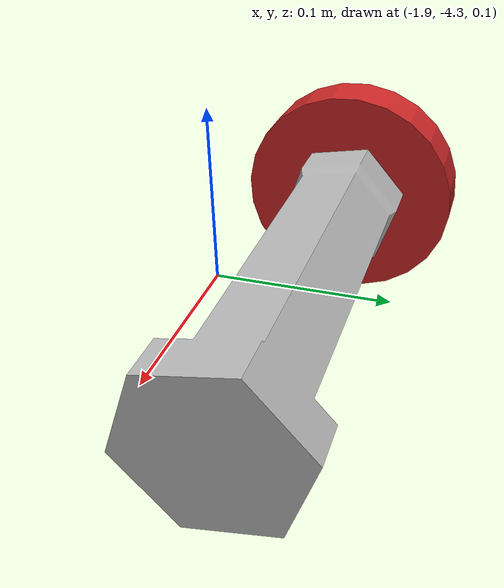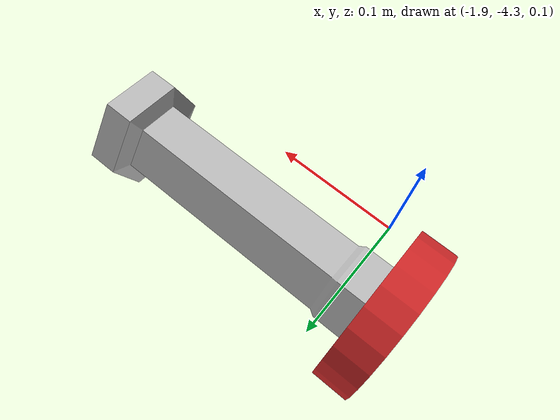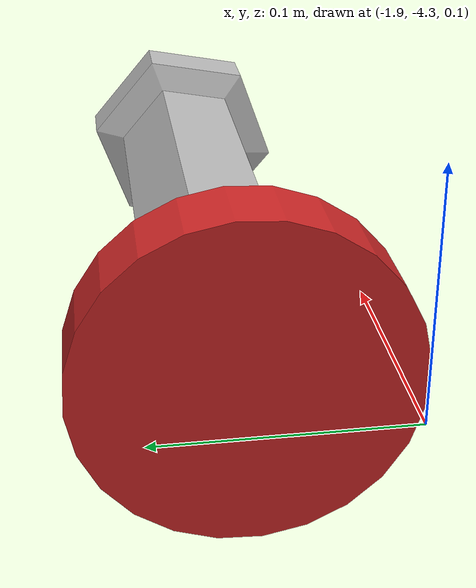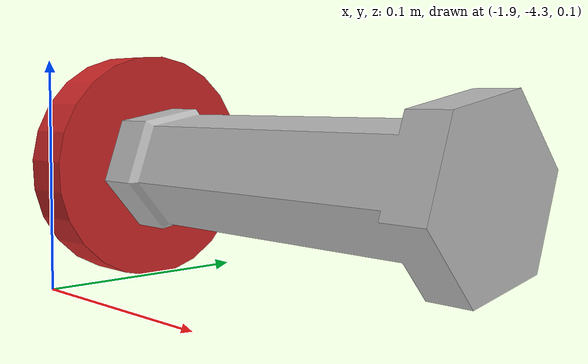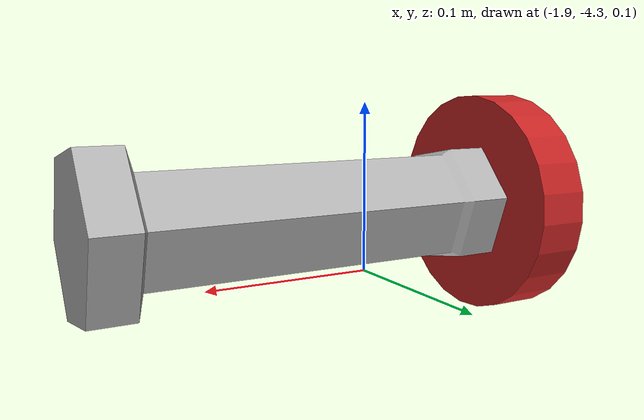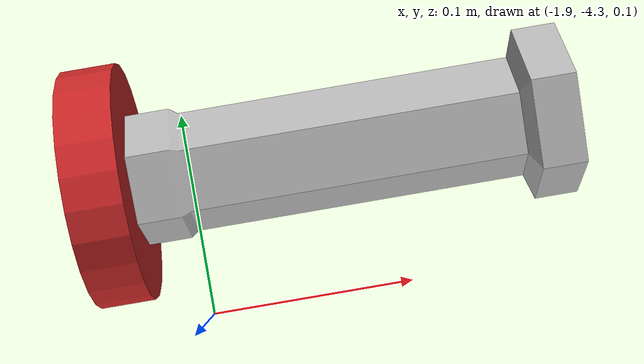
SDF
<?xml version='1.0'?>
<sdf version="1.3">
  <model name="mit_firehose_short">
    <pose>-1.81 -4.23 0.15 0.708 0 0</pose>

    <link name="coupling">
      <inertial>
        <mass>0.1</mass>
        <inertia>
          <ixx>0.01</ixx>
          <ixy>0</ixy>
          <ixz>0</ixz>
          <iyy>0.01</iyy>
          <iyz>0</iyz>
          <izz>0.01</izz>
        </inertia>
      </inertial>
      <collision name="coupling_collision">
        <pose>-0.01 0 0 0 -1.570790 0</pose>
        <geometry>
          <mesh>
            <scale>0.4 0.4 0.8</scale>
            <uri>model://mit_firehose_long/meshes/coupling_hexagon.dae</uri>
          </mesh>
        </geometry>
      </collision>
      <visual name="coupling_vis">
        <pose>-0.01 0 0 0 -1.570790 0</pose>
        <geometry>
          <mesh>
            <scale>0.4 0.4 0.8</scale>
            <uri>model://mit_firehose_long/meshes/coupling_hexagon.dae</uri>
          </mesh>
        </geometry>
        <material>
          <script>
            <uri>model://mit_firehose_long/materials/scripts</uri>
            <uri>model://mit_firehose_long/materials/textures</uri>
            <name>mit/firehose_coupling</name>
          </script>
        </material>
      </visual>

      <visual name="attachment_vis">
        <pose>-0.1225 0 0 0 -1.570790 0</pose>
        <geometry>
          <cylinder>
            <length>0.025</length>
            <radius>0.055</radius>
          </cylinder>
        </geometry>
        <material>
          <script>
            <uri>model://mit_firehose_long/materials/scripts</uri>
            <uri>model://mit_firehose_long/materials/textures</uri>
            <name>mit/firehose_coupling_red</name>
          </script>
        </material>
        <material>
        </material>
      </visual>
      <collision name="attachment_col">
        <pose>-0.1225 0 0 0 -1.570790 0</pose>
        <geometry>
          <cylinder>
            <length>0.025</length>
            <radius>0.055</radius>
          </cylinder>
        </geometry>
      </collision>
    </link>

  </model>
</sdf>
